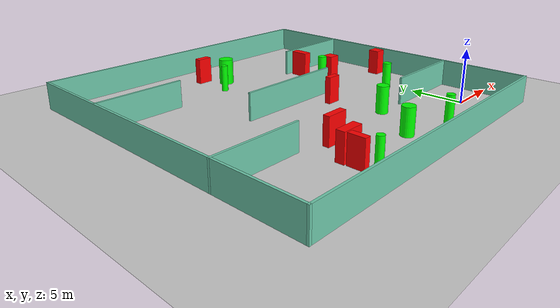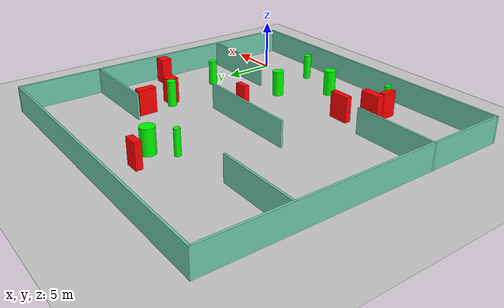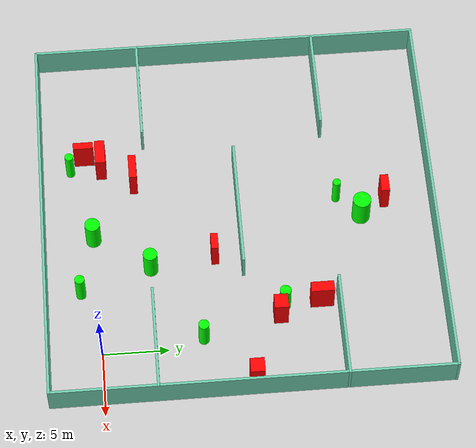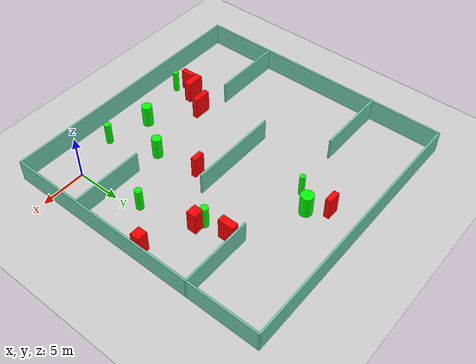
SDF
<sdf version="1.7">
 <world name="default">
  <light name="sun" type="directional">
   <pose>0 0 10 0 -0 0</pose>
   <diffuse>0.8 0.8 0.8 1</diffuse>
   <specular>0.2 0.2 0.2 1</specular>
   <attenuation>
    <range>1000</range>
    <constant>0.9</constant>
    <linear>0.01</linear>
    <quadratic>0.001</quadratic>
   </attenuation>
   <direction>-0.5 0.1 -0.9</direction>
   <spot><inner_angle>0</inner_angle><outer_angle>0</outer_angle><falloff>0</falloff></spot>
  </light>
  <model name="ground_plane">
   <static>1</static>
   <link name="link">
    <collision name="collision">
     <geometry><plane><normal>0 0 1</normal><size>100 100</size></plane></geometry>
     <surface>
      <contact><collide_bitmask>65535</collide_bitmask></contact>
      <friction><ode><mu>100</mu><mu2>50</mu2></ode></friction>
     </surface>
    </collision>
    <visual name="visual">
     <cast_shadows>0</cast_shadows>
     <geometry><plane><normal>0 0 1</normal><size>100 100</size></plane></geometry>
     <material>
      <script><uri>file://media/materials/scripts/gazebo.material</uri><name>Gazebo/Grey</name></script>
     </material>
    </visual>
   </link>
  </model>
  <gravity>0 0 -9.8</gravity>
  <magnetic_field>6e-06 2.3e-05 -4.2e-05</magnetic_field>
  <atmosphere type="adiabatic"/>
  <physics type="ode">
   <max_step_size>0.001</max_step_size>
   <real_time_factor>1</real_time_factor>
   <real_time_update_rate>1000</real_time_update_rate>
  </physics>
  <scene><ambient>0.4 0.4 0.4 1</ambient><background>0.7 0.7 0.7 1</background><shadows>1</shadows></scene>
  <spherical_coordinates>
   <surface_model>EARTH_WGS84</surface_model>
   <latitude_deg>0</latitude_deg>
   <longitude_deg>0</longitude_deg>
   <elevation>0</elevation>
   <heading_deg>0</heading_deg>
  </spherical_coordinates>
  <model name="my_base_walls">
   <link name="Wall_10">
    <collision name="Wall_10_Collision">
     <geometry><box><size>8.2 0.2 2.5</size></box></geometry>
     <pose>0 0 1.25 0 -0 0</pose>
    </collision>
    <visual name="Wall_10_Visual">
     <pose>0 0 1.25 0 -0 0</pose>
     <geometry><box><size>8.2 0.2 2.5</size></box></geometry>
     <material>
      <script><uri>file://media/materials/scripts/gazebo.material</uri><name>Gazebo/Grey</name></script>
      <ambient>0.435294 0.796078 0.67451 1</ambient>
     </material>
     <meta><layer>0</layer></meta>
    </visual>
    <pose>-11 -7 0 0 -0 0</pose>
   </link>
   <link name="Wall_12">
    <collision name="Wall_12_Collision">
     <geometry><box><size>8.2 0.2 2.5</size></box></geometry>
     <pose>0 0 1.25 0 -0 0</pose>
    </collision>
    <visual name="Wall_12_Visual">
     <pose>0 0 1.25 0 -0 0</pose>
     <geometry><box><size>8.2 0.2 2.5</size></box></geometry>
     <material>
      <script><uri>file://media/materials/scripts/gazebo.material</uri><name>Gazebo/Grey</name></script>
      <ambient>0.435294 0.796078 0.67451 1</ambient>
     </material>
     <meta><layer>0</layer></meta>
    </visual>
    <pose>-11 7 0 0 -0 0</pose>
   </link>
   <link name="Wall_14">
    <collision name="Wall_14_Collision">
     <geometry><box><size>8.2 0.2 2.5</size></box></geometry>
     <pose>0 0 1.25 0 -0 0</pose>
    </collision>
    <visual name="Wall_14_Visual">
     <pose>0 0 1.25 0 -0 0</pose>
     <geometry><box><size>8.2 0.2 2.5</size></box></geometry>
     <material>
      <script><uri>file://media/materials/scripts/gazebo.material</uri><name>Gazebo/Grey</name></script>
      <ambient>0.435294 0.796078 0.67451 1</ambient>
     </material>
     <meta><layer>0</layer></meta>
    </visual>
    <pose>11 7 0 0 -0 3.14159</pose>
   </link>
   <link name="Wall_16">
    <collision name="Wall_16_Collision">
     <geometry><box><size>10.2 0.2 2.5</size></box></geometry>
     <pose>0 0 1.25 0 -0 0</pose>
    </collision>
    <visual name="Wall_16_Visual">
     <pose>0 0 1.25 0 -0 0</pose>
     <geometry><box><size>10.2 0.2 2.5</size></box></geometry>
     <material>
      <script><uri>file://media/materials/scripts/gazebo.material</uri><name>Gazebo/Grey</name></script>
      <ambient>0.435294 0.796078 0.67451 1</ambient>
     </material>
     <meta><layer>0</layer></meta>
    </visual>
    <pose>0 0 0 0 -0 3.14159</pose>
   </link>
   <link name="Wall_2">
    <collision name="Wall_2_Collision">
     <geometry><box><size>30.2 0.2 2.5</size></box></geometry>
     <pose>0 0 1.25 0 -0 0</pose>
    </collision>
    <visual name="Wall_2_Visual">
     <pose>0 0 1.25 0 -0 0</pose>
     <geometry><box><size>30.2 0.2 2.5</size></box></geometry>
     <material>
      <script><uri>file://media/materials/scripts/gazebo.material</uri><name>Gazebo/Grey</name></script>
      <ambient>0.435294 0.796078 0.67451 1</ambient>
     </material>
     <meta><layer>0</layer></meta>
    </visual>
    <pose>0 -15 0 0 -0 3.14159</pose>
   </link>
   <link name="Wall_3">
    <collision name="Wall_3_Collision">
     <geometry><box><size>30.2 0.2 2.5</size></box></geometry>
     <pose>0 0 1.25 0 -0 0</pose>
    </collision>
    <visual name="Wall_3_Visual">
     <pose>0 0 1.25 0 -0 0</pose>
     <geometry><box><size>30.2 0.2 2.5</size></box></geometry>
     <material>
      <script><uri>file://media/materials/scripts/gazebo.material</uri><name>Gazebo/Grey</name></script>
      <ambient>0.435294 0.796078 0.67451 1</ambient>
     </material>
     <meta><layer>0</layer></meta>
    </visual>
    <pose>-15 0 0 0 -0 1.5708</pose>
   </link>
   <link name="Wall_4">
    <collision name="Wall_4_Collision">
     <geometry><box><size>30.2 0.2 2.5</size></box></geometry>
     <pose>0 0 1.25 0 -0 0</pose>
    </collision>
    <visual name="Wall_4_Visual">
     <pose>0 0 1.25 0 -0 0</pose>
     <geometry><box><size>30.2 0.2 2.5</size></box></geometry>
     <material>
      <script><uri>file://media/materials/scripts/gazebo.material</uri><name>Gazebo/Grey</name></script>
      <ambient>0.435294 0.796078 0.67451 1</ambient>
     </material>
     <meta><layer>0</layer></meta>
    </visual>
    <pose>0 15 0 0 -0 0</pose>
   </link>
   <link name="Wall_6">
    <collision name="Wall_6_Collision">
     <geometry><box><size>30.2 0.2 2.5</size></box></geometry>
     <pose>0 0 1.25 0 -0 0</pose>
    </collision>
    <visual name="Wall_6_Visual">
     <pose>0 0 1.25 0 -0 0</pose>
     <geometry><box><size>30.2 0.2 2.5</size></box></geometry>
     <material>
      <script><uri>file://media/materials/scripts/gazebo.material</uri><name>Gazebo/Grey</name></script>
      <ambient>0.435294 0.796078 0.67451 1</ambient>
     </material>
     <meta><layer>0</layer></meta>
    </visual>
    <pose>15 0 0 0 -0 1.5708</pose>
   </link>
   <link name="Wall_8">
    <collision name="Wall_8_Collision">
     <geometry><box><size>8.2 0.2 2.5</size></box></geometry>
     <pose>0 0 1.25 0 -0 0</pose>
    </collision>
    <visual name="Wall_8_Visual">
     <pose>0 0 1.25 0 -0 0</pose>
     <geometry><box><size>8.2 0.2 2.5</size></box></geometry>
     <material>
      <script><uri>file://media/materials/scripts/gazebo.material</uri><name>Gazebo/Grey</name></script>
      <ambient>0.435294 0.796078 0.67451 1</ambient>
     </material>
     <meta><layer>0</layer></meta>
    </visual>
    <pose>11 -7 0 0 -0 3.14159</pose>
   </link>
   <static>1</static>
   <pose>-11 11 0 0 -0 0</pose>
  </model>
  <model name="cylinder1">
   <static>1</static>
   <link name="link">
    <inertial>
     <mass>1</mass>
     <inertia><ixx>0.5</ixx><ixy>0</ixy><ixz>0</ixz><iyy>0.5</iyy><iyz>0</iyz><izz>1</izz></inertia>
    </inertial>
    <collision name="collision">
     <geometry><cylinder><radius>0.6922007920766118</radius><length>2.5</length></cylinder></geometry>
    </collision>
    <visual name="visual">
     <geometry><cylinder><radius>0.6922007920766118</radius><length>2.5</length></cylinder></geometry>
     <material>
      <ambient>0 1 0 1</ambient>
      <diffuse>0 1 0 1</diffuse>
      <specular>0.1 0.1 0.1 1</specular>
      <emissive>0 0 0 0</emissive>
     </material>
    </visual>
   </link>
   <pose>-10.442494586913071 20.444783344020685 1.25 0 0 0</pose>
  </model>
  <model name="cylinder2">
   <static>1</static>
   <link name="link">
    <inertial>
     <mass>1</mass>
     <inertia><ixx>0.5</ixx><ixy>0</ixy><ixz>0</ixz><iyy>0.5</iyy><iyz>0</iyz><izz>1</izz></inertia>
    </inertial>
    <collision name="collision">
     <geometry><cylinder><radius>0.3045444177292285</radius><length>2.5</length></cylinder></geometry>
    </collision>
    <visual name="visual">
     <geometry><cylinder><radius>0.3045444177292285</radius><length>2.5</length></cylinder></geometry>
     <material>
      <ambient>0 1 0 1</ambient>
      <diffuse>0 1 0 1</diffuse>
      <specular>0.1 0.1 0.1 1</specular>
      <emissive>0 0 0 0</emissive>
     </material>
    </visual>
   </link>
   <pose>-12.165350338588679 18.680337731813363 1.25 0 0 0</pose>
  </model>
  <model name="cylinder3">
   <static>1</static>
   <link name="link">
    <inertial>
     <mass>1</mass>
     <inertia><ixx>0.5</ixx><ixy>0</ixy><ixz>0</ixz><iyy>0.5</iyy><iyz>0</iyz><izz>1</izz></inertia>
    </inertial>
    <collision name="collision">
     <geometry><cylinder><radius>0.37233785148715204</radius><length>2.5</length></cylinder></geometry>
    </collision>
    <visual name="visual">
     <geometry><cylinder><radius>0.37233785148715204</radius><length>2.5</length></cylinder></geometry>
     <material>
      <ambient>0 1 0 1</ambient>
      <diffuse>0 1 0 1</diffuse>
      <specular>0.1 0.1 0.1 1</specular>
      <emissive>0 0 0 0</emissive>
     </material>
    </visual>
   </link>
   <pose>-5.17875382211307 -1.3745779492835482 1.25 0 0 0</pose>
  </model>
  <model name="cylinder4">
   <static>1</static>
   <link name="link">
    <inertial>
     <mass>1</mass>
     <inertia><ixx>0.5</ixx><ixy>0</ixy><ixz>0</ixz><iyy>0.5</iyy><iyz>0</iyz><izz>1</izz></inertia>
    </inertial>
    <collision name="collision">
     <geometry><cylinder><radius>0.5403647815393127</radius><length>2.5</length></cylinder></geometry>
    </collision>
    <visual name="visual">
     <geometry><cylinder><radius>0.5403647815393127</radius><length>2.5</length></cylinder></geometry>
     <material>
      <ambient>0 1 0 1</ambient>
      <diffuse>0 1 0 1</diffuse>
      <specular>0.1 0.1 0.1 1</specular>
      <emissive>0 0 0 0</emissive>
     </material>
    </visual>
   </link>
   <pose>-6.940202788166442 4.013012544018418 1.25 0 0 0</pose>
  </model>
  <model name="cylinder5">
   <static>1</static>
   <link name="link">
    <inertial>
     <mass>1</mass>
     <inertia><ixx>0.5</ixx><ixy>0</ixy><ixz>0</ixz><iyy>0.5</iyy><iyz>0</iyz><izz>1</izz></inertia>
    </inertial>
    <collision name="collision">
     <geometry><cylinder><radius>0.4297326130822099</radius><length>2.5</length></cylinder></geometry>
    </collision>
    <visual name="visual">
     <geometry><cylinder><radius>0.4297326130822099</radius><length>2.5</length></cylinder></geometry>
     <material>
      <ambient>0 1 0 1</ambient>
      <diffuse>0 1 0 1</diffuse>
      <specular>0.1 0.1 0.1 1</specular>
      <emissive>0 0 0 0</emissive>
     </material>
    </visual>
   </link>
   <pose>-3.0615908221478527 13.90939524280832 1.25 0 0 0</pose>
  </model>
  <model name="cylinder6">
   <static>1</static>
   <link name="link">
    <inertial>
     <mass>1</mass>
     <inertia><ixx>0.5</ixx><ixy>0</ixy><ixz>0</ixz><iyy>0.5</iyy><iyz>0</iyz><izz>1</izz></inertia>
    </inertial>
    <collision name="collision">
     <geometry><cylinder><radius>0.3279742850764263</radius><length>2.5</length></cylinder></geometry>
    </collision>
    <visual name="visual">
     <geometry><cylinder><radius>0.3279742850764263</radius><length>2.5</length></cylinder></geometry>
     <material>
      <ambient>0 1 0 1</ambient>
      <diffuse>0 1 0 1</diffuse>
      <specular>0.1 0.1 0.1 1</specular>
      <emissive>0 0 0 0</emissive>
     </material>
    </visual>
   </link>
   <pose>-16.053789724899243 -1.7506246249562678 1.25 0 0 0</pose>
  </model>
  <model name="cylinder7">
   <static>1</static>
   <link name="link">
    <inertial>
     <mass>1</mass>
     <inertia><ixx>0.5</ixx><ixy>0</ixy><ixz>0</ixz><iyy>0.5</iyy><iyz>0</iyz><izz>1</izz></inertia>
    </inertial>
    <collision name="collision">
     <geometry><cylinder><radius>0.5772953056761758</radius><length>2.5</length></cylinder></geometry>
    </collision>
    <visual name="visual">
     <geometry><cylinder><radius>0.5772953056761758</radius><length>2.5</length></cylinder></geometry>
     <material>
      <ambient>0 1 0 1</ambient>
      <diffuse>0 1 0 1</diffuse>
      <specular>0.1 0.1 0.1 1</specular>
      <emissive>0 0 0 0</emissive>
     </material>
    </visual>
   </link>
   <pose>-9.851871181274836 -0.22293868664414296 1.25 0 0 0</pose>
  </model>
  <model name="cylinder8">
   <static>1</static>
   <link name="link">
    <inertial>
     <mass>1</mass>
     <inertia><ixx>0.5</ixx><ixy>0</ixy><ixz>0</ixz><iyy>0.5</iyy><iyz>0</iyz><izz>1</izz></inertia>
    </inertial>
    <collision name="collision">
     <geometry><cylinder><radius>0.401785248837105</radius><length>2.5</length></cylinder></geometry>
    </collision>
    <visual name="visual">
     <geometry><cylinder><radius>0.401785248837105</radius><length>2.5</length></cylinder></geometry>
     <material>
      <ambient>0 1 0 1</ambient>
      <diffuse>0 1 0 1</diffuse>
      <specular>0.1 0.1 0.1 1</specular>
      <emissive>0 0 0 0</emissive>
     </material>
    </visual>
   </link>
   <pose>-0.6706500762126808 7.6257103612555746 1.25 0 0 0</pose>
  </model>
  <model name="box1">
   <static>1</static>
   <link name="link">
    <inertial>
     <mass>1</mass>
     <inertia><ixx>0.083</ixx><ixy>0</ixy><ixz>0</ixz><iyy>0.083</iyy><iyz>0</iyz><izz>0.083</izz></inertia>
    </inertial>
    <collision name="collision">
     <geometry><box><size>0.8068471099572229 1.7476184304188656 2.5</size></box></geometry>
    </collision>
    <visual name="visual">
     <geometry><box><size>0.8068471099572229 1.7476184304188656 2.5</size></box></geometry>
     <material>
      <ambient>1 0 0 1</ambient>
      <diffuse>1 0 0 1</diffuse>
      <specular>0.1 0.1 0.1 1</specular>
      <emissive>0 0 0 0</emissive>
     </material>
    </visual>
    <sensor name="my_contact" type="contact">
     <contact><collision>box_collision</collision><topic>__default_topic__</topic></contact>
    </sensor>
   </link>
   <pose>-3.1795047596756234 16.705213622399317 1.25 0 0 0</pose>
  </model>
  <model name="box2">
   <static>1</static>
   <link name="link">
    <inertial>
     <mass>1</mass>
     <inertia><ixx>0.083</ixx><ixy>0</ixy><ixz>0</ixz><iyy>0.083</iyy><iyz>0</iyz><izz>0.083</izz></inertia>
    </inertial>
    <collision name="collision">
     <geometry><box><size>1.1447457913524075 1.0616499193430466 2.5</size></box></geometry>
    </collision>
    <visual name="visual">
     <geometry><box><size>1.1447457913524075 1.0616499193430466 2.5</size></box></geometry>
     <material>
      <ambient>1 0 0 1</ambient>
      <diffuse>1 0 0 1</diffuse>
      <specular>0.1 0.1 0.1 1</specular>
      <emissive>0 0 0 0</emissive>
     </material>
    </visual>
    <sensor name="my_contact" type="contact">
     <contact><collision>box_collision</collision><topic>__default_topic__</topic></contact>
    </sensor>
   </link>
   <pose>-2.198976969821384 13.508117241691043 1.25 0 0 0</pose>
  </model>
  <model name="box3">
   <static>1</static>
   <link name="link">
    <inertial>
     <mass>1</mass>
     <inertia><ixx>0.083</ixx><ixy>0</ixy><ixz>0</ixz><iyy>0.083</iyy><iyz>0</iyz><izz>0.083</izz></inertia>
    </inertial>
    <collision name="collision">
     <geometry><box><size>2.016772818053459 0.5942104054508196 2.5</size></box></geometry>
    </collision>
    <visual name="visual">
     <geometry><box><size>2.016772818053459 0.5942104054508196 2.5</size></box></geometry>
     <material>
      <ambient>1 0 0 1</ambient>
      <diffuse>1 0 0 1</diffuse>
      <specular>0.1 0.1 0.1 1</specular>
      <emissive>0 0 0 0</emissive>
     </material>
    </visual>
    <sensor name="my_contact" type="contact">
     <contact><collision>box_collision</collision><topic>__default_topic__</topic></contact>
    </sensor>
   </link>
   <pose>-14.846134060982791 3.0892188413542847 1.25 0 0 0</pose>
  </model>
  <model name="box4">
   <static>1</static>
   <link name="link">
    <inertial>
     <mass>1</mass>
     <inertia><ixx>0.083</ixx><ixy>0</ixy><ixz>0</ixz><iyy>0.083</iyy><iyz>0</iyz><izz>0.083</izz></inertia>
    </inertial>
    <collision name="collision">
     <geometry><box><size>2.0126177803468366 0.7811748074343017 2.5</size></box></geometry>
    </collision>
    <visual name="visual">
     <geometry><box><size>2.0126177803468366 0.7811748074343017 2.5</size></box></geometry>
     <material>
      <ambient>1 0 0 1</ambient>
      <diffuse>1 0 0 1</diffuse>
      <specular>0.1 0.1 0.1 1</specular>
      <emissive>0 0 0 0</emissive>
     </material>
    </visual>
    <sensor name="my_contact" type="contact">
     <contact><collision>box_collision</collision><topic>__default_topic__</topic></contact>
    </sensor>
   </link>
   <pose>-16.367028581860087 0.6420029831731475 1.25 0 0 0</pose>
  </model>
  <model name="box5">
   <static>1</static>
   <link name="link">
    <inertial>
     <mass>1</mass>
     <inertia><ixx>0.083</ixx><ixy>0</ixy><ixz>0</ixz><iyy>0.083</iyy><iyz>0</iyz><izz>0.083</izz></inertia>
    </inertial>
    <collision name="collision">
     <geometry><box><size>0.5656310263802036 1.5243722484737074 2.5</size></box></geometry>
    </collision>
    <visual name="visual">
     <geometry><box><size>0.5656310263802036 1.5243722484737074 2.5</size></box></geometry>
     <material>
      <ambient>1 0 0 1</ambient>
      <diffuse>1 0 0 1</diffuse>
      <specular>0.1 0.1 0.1 1</specular>
      <emissive>0 0 0 0</emissive>
     </material>
    </visual>
    <sensor name="my_contact" type="contact">
     <contact><collision>box_collision</collision><topic>__default_topic__</topic></contact>
    </sensor>
   </link>
   <pose>-17.00735039394893 -0.635478935998548 1.25 0 0 0</pose>
  </model>
  <model name="box6">
   <static>1</static>
   <link name="link">
    <inertial>
     <mass>1</mass>
     <inertia><ixx>0.083</ixx><ixy>0</ixy><ixz>0</ixz><iyy>0.083</iyy><iyz>0</iyz><izz>0.083</izz></inertia>
    </inertial>
    <collision name="collision">
     <geometry><box><size>1.425381805450324 0.6372626582816259 2.5</size></box></geometry>
    </collision>
    <visual name="visual">
     <geometry><box><size>1.425381805450324 0.6372626582816259 2.5</size></box></geometry>
     <material>
      <ambient>1 0 0 1</ambient>
      <diffuse>1 0 0 1</diffuse>
      <specular>0.1 0.1 0.1 1</specular>
      <emissive>0 0 0 0</emissive>
     </material>
    </visual>
    <sensor name="my_contact" type="contact">
     <contact><collision>box_collision</collision><topic>__default_topic__</topic></contact>
    </sensor>
   </link>
   <pose>-11.835127304036975 22.359165416552642 1.25 0 0 0</pose>
  </model>
  <model name="box7">
   <static>1</static>
   <link name="link">
    <inertial>
     <mass>1</mass>
     <inertia><ixx>0.083</ixx><ixy>0</ixy><ixz>0</ixz><iyy>0.083</iyy><iyz>0</iyz><izz>0.083</izz></inertia>
    </inertial>
    <collision name="collision">
     <geometry><box><size>1.3080930208553325 0.5579834220937498 2.5</size></box></geometry>
    </collision>
    <visual name="visual">
     <geometry><box><size>1.3080930208553325 0.5579834220937498 2.5</size></box></geometry>
     <material>
      <ambient>1 0 0 1</ambient>
      <diffuse>1 0 0 1</diffuse>
      <specular>0.1 0.1 0.1 1</specular>
      <emissive>0 0 0 0</emissive>
     </material>
    </visual>
    <sensor name="my_contact" type="contact">
     <contact><collision>box_collision</collision><topic>__default_topic__</topic></contact>
    </sensor>
   </link>
   <pose>-7.719861594415715 8.931416784652578 1.25 0 0 0</pose>
  </model>
  <model name="box8">
   <static>1</static>
   <link name="link">
    <inertial>
     <mass>1</mass>
     <inertia><ixx>0.083</ixx><ixy>0</ixy><ixz>0</ixz><iyy>0.083</iyy><iyz>0</iyz><izz>0.083</izz></inertia>
    </inertial>
    <collision name="collision">
     <geometry><box><size>1.1290377579230175 1.0804565097247414 2.5</size></box></geometry>
    </collision>
    <visual name="visual">
     <geometry><box><size>1.1290377579230175 1.0804565097247414 2.5</size></box></geometry>
     <material>
      <ambient>1 0 0 1</ambient>
      <diffuse>1 0 0 1</diffuse>
      <specular>0.1 0.1 0.1 1</specular>
      <emissive>0 0 0 0</emissive>
     </material>
    </visual>
    <sensor name="my_contact" type="contact">
     <contact><collision>box_collision</collision><topic>__default_topic__</topic></contact>
    </sensor>
   </link>
   <pose>2.9485467675401082 11.315242527783052 1.25 0 0 0</pose>
  </model>
 </world>
</sdf>
